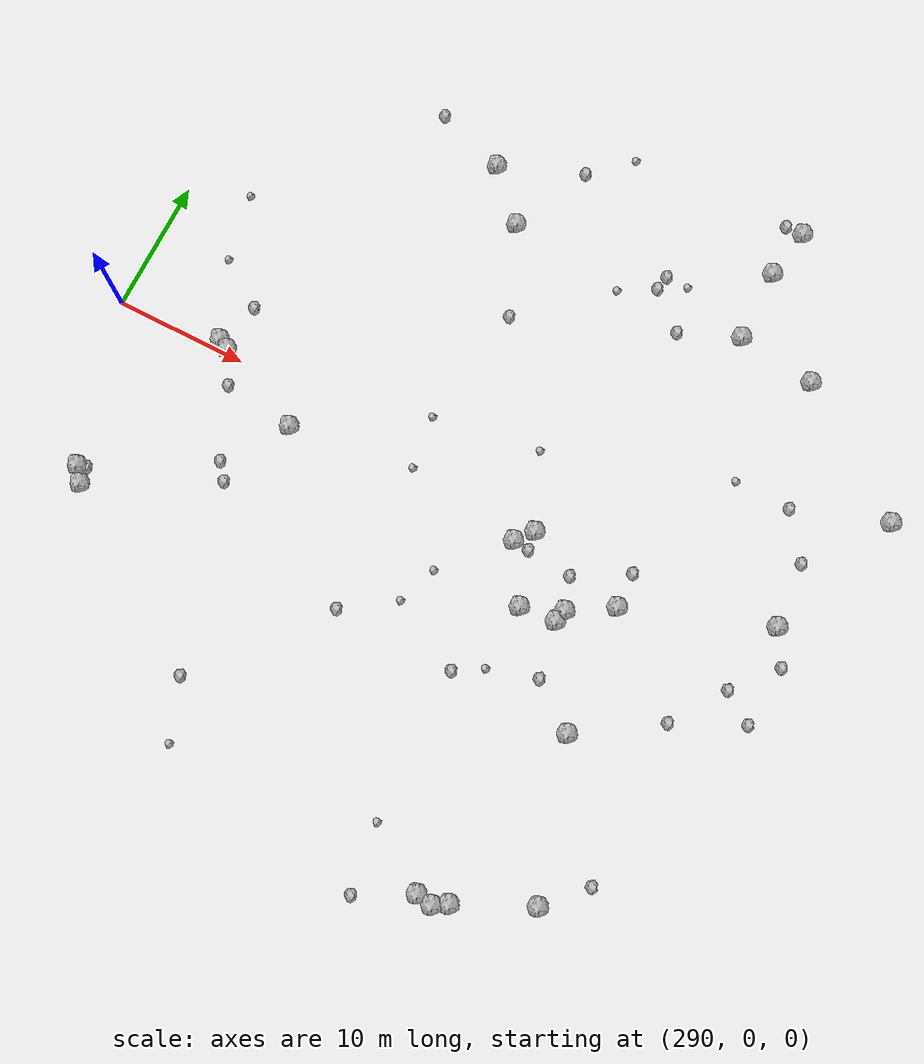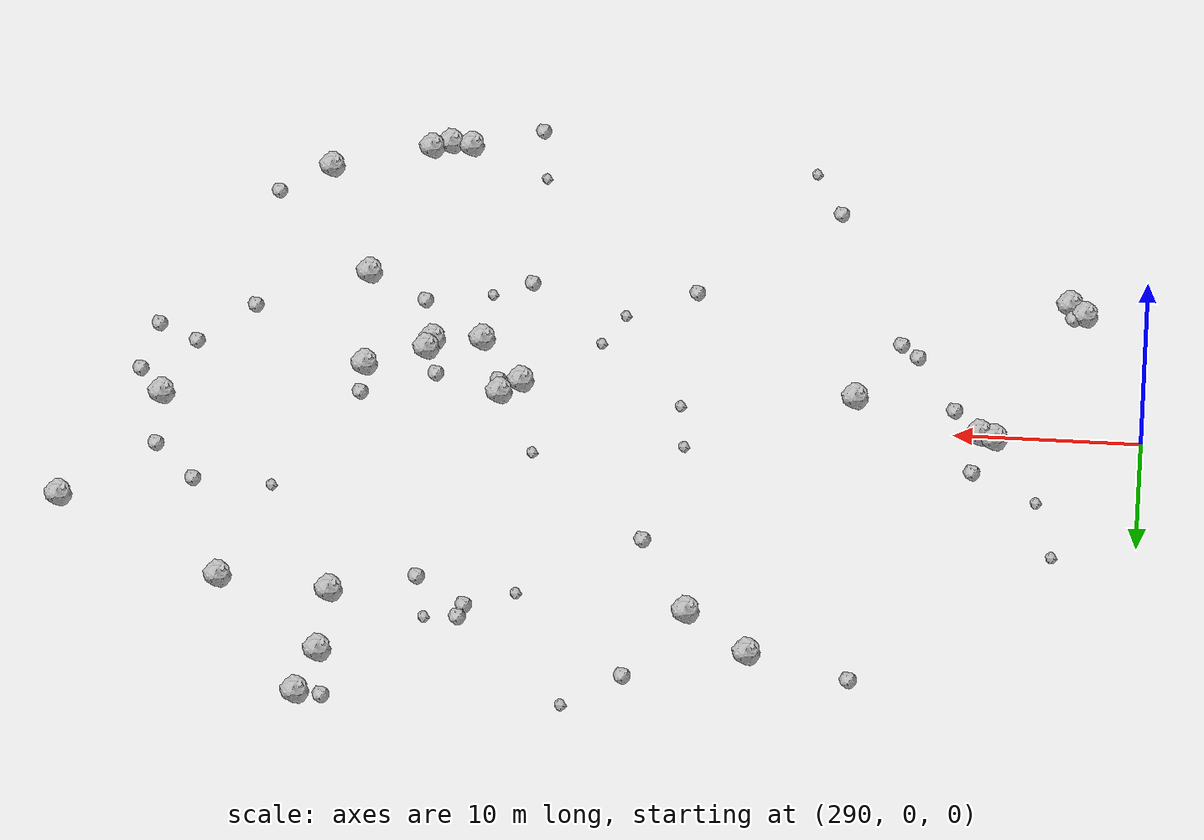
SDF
<sdf version="1.6">
 <world name="default">
  <include><uri>model://sun</uri></include>
  <model name="rock1_8_3">
   <include><uri>model://rock1</uri><pose>346.5642410652772 10.37551302485683 0.5 0 0 0</pose></include>
  </model>
  <model name="rock1_8_4">
   <include><uri>model://rock1</uri><pose>332.81738693338815 -13.276534724986885 0.5 0 0 0</pose></include>
  </model>
  <model name="rock1_8_5">
   <include><uri>model://rock1</uri><pose>294.22415908864707 -13.13361326598811 0.5 0 0 0</pose></include>
  </model>
  <model name="rock1_8_6">
   <include><uri>model://rock1</uri><pose>332.0139182032614 -3.8178052953670765 0.5 0 0 0</pose></include>
  </model>
  <model name="rock1_8_7">
   <include><uri>model://rock1</uri><pose>342.53533948384757 -0.006439662371221289 0.5 0 0 0</pose></include>
  </model>
  <model name="rock1_8_8">
   <include><uri>model://rock1</uri><pose>331.2911293859529 23.493949465347782 0.5 0 0 0</pose></include>
  </model>
  <model name="rock1_8_9">
   <include><uri>model://rock1</uri><pose>331.3472549757432 18.050708571637045 0.5 0 0 0</pose></include>
  </model>
  <model name="rock1_8_10">
   <include><uri>model://rock1</uri><pose>336.2188660527239 -24.504704339852708 0.5 0 0 0</pose></include>
  </model>
  <model name="rock1_8_11">
   <include><uri>model://rock1</uri><pose>331.9685033858939 27.280738058318427 0.5 0 0 0</pose></include>
  </model>
  <model name="rock1_8_12">
   <include><uri>model://rock1</uri><pose>312.89702378402205 18.43500557227857 0.5 0 0 0</pose></include>
  </model>
  <model name="rock1_8_13">
   <include><uri>model://rock1</uri><pose>330.8243655787926 -27.063594034823634 0.5 0 0 0</pose></include>
  </model>
  <model name="rock1_8_14">
   <include><uri>model://rock1</uri><pose>305.4028149512114 -2.6822018501295872 0.5 0 0 0</pose></include>
  </model>
  <model name="rock1_8_15">
   <include><uri>model://rock1</uri><pose>309.52921908464623 21.92354333885212 0.5 0 0 0</pose></include>
  </model>
  <model name="rock1_8_16">
   <include><uri>model://rock1</uri><pose>328.8660397866158 -5.704489742814101 0.5 0 0 0</pose></include>
  </model>
  <model name="rock1_8_17">
   <include><uri>model://rock1</uri><pose>329.81030197213016 -27.656876587858438 0.5 0 0 0</pose></include>
  </model>
  <model name="rock1_8_18">
   <include><uri>model://rock1</uri><pose>323.4359897299658 -2.8444613680310056 0.5 0 0 0</pose></include>
  </model>
  <model name="rock1_8_19">
   <include><uri>model://rock1</uri><pose>337.22651470133997 17.231871019310198 0.5 0 0 0</pose></include>
  </model>
  <model name="rock1_8_20">
   <include><uri>model://rock1</uri><pose>328.59667462887666 -27.450009588056044 0.5 0 0 0</pose></include>
  </model>
  <model name="rock1_8_21">
   <include><uri>model://rock1</uri><pose>325.9246678181128 -6.874942958951504 0.5 0 0 0</pose></include>
  </model>
  <model name="rock1_8_22">
   <include><uri>model://rock1</uri><pose>328.6176827000208 -6.640724835579977 0.5 0 0 0</pose></include>
  </model>
  <model name="rock1_8_23">
   <include><uri>model://rock1</uri><pose>293.37258170756 -12.059175104066824 0.5 0 0 0</pose></include>
  </model>
  <model name="rock1_8_24">
   <include><uri>model://rock1</uri><pose>298.6154618860487 0.35950252783767667 0.5 0 0 0</pose></include>
  </model>
  <model name="rock1_8_25">
   <include><uri>model://rock1</uri><pose>297.8133714031088 0.754524150785457 0.5 0 0 0</pose></include>
  </model>
  <model name="rock1_8_26">
   <include><uri>model://rock1</uri><pose>324.4831823330386 -1.5908596596968252 0.5 0 0 0</pose></include>
  </model>
  <model name="rock2_8_0">
   <include><uri>model://rock2</uri><pose>331.9197836829026 -1.152815055898941 0.3 0 0 0</pose></include>
  </model>
  <model name="rock2_8_1">
   <include><uri>model://rock2</uri><pose>330.6247074406292 27.327232953222882 0.3 0 0 0</pose></include>
  </model>
  <model name="rock2_8_2">
   <include><uri>model://rock2</uri><pose>303.1750631765063 -8.354048740477108 0.3 0 0 0</pose></include>
  </model>
  <model name="rock2_8_3">
   <include><uri>model://rock2</uri><pose>324.66590148341464 -29.53042977640385 0.3 0 0 0</pose></include>
  </model>
  <model name="rock2_8_4">
   <include><uri>model://rock2</uri><pose>300.00787816809304 -1.97773355875459 0.3 0 0 0</pose></include>
  </model>
  <model name="rock2_8_5">
   <include><uri>model://rock2</uri><pose>329.41313826816037 -10.745307429475211 0.3 0 0 0</pose></include>
  </model>
  <model name="rock2_8_6">
   <include><uri>model://rock2</uri><pose>338.6266151142221 -9.473956496777816 0.3 0 0 0</pose></include>
  </model>
  <model name="rock2_8_7">
   <include><uri>model://rock2</uri><pose>298.8386826503314 4.019497078666113 0.3 0 0 0</pose></include>
  </model>
  <model name="rock2_8_8">
   <include><uri>model://rock2</uri><pose>293.97072938986645 -11.865828917741691 0.3 0 0 0</pose></include>
  </model>
  <model name="rock2_8_9">
   <include><uri>model://rock2</uri><pose>323.72899283175263 -13.016791765065022 0.3 0 0 0</pose></include>
  </model>
  <model name="rock2_8_10">
   <include><uri>model://rock2</uri><pose>324.29195977879647 18.685158458749257 0.3 0 0 0</pose></include>
  </model>
  <model name="rock2_8_11">
   <include><uri>model://rock2</uri><pose>343.9874289298641 -2.465091986057079 0.3 0 0 0</pose></include>
  </model>
  <model name="rock2_8_12">
   <include><uri>model://rock2</uri><pose>341.3378675506882 -5.540782216659899 0.3 0 0 0</pose></include>
  </model>
  <model name="rock2_8_13">
   <include><uri>model://rock2</uri><pose>342.1465328261564 4.858628301289599 0.3 0 0 0</pose></include>
  </model>
  <model name="rock2_8_14">
   <include><uri>model://rock2</uri><pose>314.61002485120196 -12.784019953057477 0.3 0 0 0</pose></include>
  </model>
  <model name="rock2_8_15">
   <include><uri>model://rock2</uri><pose>324.6491982891248 -2.9835645130980595 0.3 0 0 0</pose></include>
  </model>
  <model name="rock2_8_16">
   <include><uri>model://rock2</uri><pose>315.65238080035033 24.362885357477737 0.3 0 0 0</pose></include>
  </model>
  <model name="rock2_8_17">
   <include><uri>model://rock2</uri><pose>324.5023532623866 19.80274991975479 0.3 0 0 0</pose></include>
  </model>
  <model name="rock2_8_18">
   <include><uri>model://rock2</uri><pose>326.9891625129465 16.28132736462613 0.3 0 0 0</pose></include>
  </model>
  <model name="rock2_8_19">
   <include><uri>model://rock2</uri><pose>304.2390468192977 23.770556708623104 0.3 0 0 0</pose></include>
  </model>
  <model name="rock2_8_20">
   <include><uri>model://rock2</uri><pose>339.73744997354254 8.068806522554688 0.3 0 0 0</pose></include>
  </model>
  <model name="rock2_8_21">
   <include><uri>model://rock2</uri><pose>338.84818230222436 -21.704902439378557 0.3 0 0 0</pose></include>
  </model>
  <model name="rock2_8_22">
   <include><uri>model://rock2</uri><pose>307.2119358218897 -21.836330535326503 0.3 0 0 0</pose></include>
  </model>
  <model name="rock2_8_23">
   <include><uri>model://rock2</uri><pose>328.06999505305873 -3.324028073441724 0.3 0 0 0</pose></include>
  </model>
  <model name="rock2_8_24">
   <include><uri>model://rock2</uri><pose>343.60798897934535 -7.102228174996533 0.3 0 0 0</pose></include>
  </model>
  <model name="rock2_8_25">
   <include><uri>model://rock2</uri><pose>302.22038823343553 -7.154925385241825 0.3 0 0 0</pose></include>
  </model>
  <model name="rock2_8_26">
   <include><uri>model://rock2</uri><pose>315.64291568900126 11.863711150753822 0.3 0 0 0</pose></include>
  </model>
  <model name="rock3_8_0">
   <include><uri>model://rock3</uri><pose>295.3472192123555 6.442657701837042 0.2 0 0 0</pose></include>
  </model>
  <model name="rock3_8_1">
   <include><uri>model://rock3</uri><pose>319.3810035202541 -7.310618563040421 0.2 0 0 0</pose></include>
  </model>
  <model name="rock3_8_2">
   <include><uri>model://rock3</uri><pose>335.50834426456584 8.150738042943829 0.2 0 0 0</pose></include>
  </model>
  <model name="rock3_8_3">
   <include><uri>model://rock3</uri><pose>318.3002397792762 -10.267462024020439 0.2 0 0 0</pose></include>
  </model>
  <model name="rock3_8_4">
   <include><uri>model://rock3</uri><pose>325.76380025223284 -11.831621493441958 0.2 0 0 0</pose></include>
  </model>
  <model name="rock3_8_5">
   <include><uri>model://rock3</uri><pose>308.8113156555892 -26.30549549463072 0.2 0 0 0</pose></include>
  </model>
  <model name="rock3_8_6">
   <include><uri>model://rock3</uri><pose>314.63175251213886 -1.3895568731820873 0.2 0 0 0</pose></include>
  </model>
  <model name="rock3_8_7">
   <include><uri>model://rock3</uri><pose>322.1336949189746 3.842527055906018 0.2 0 0 0</pose></include>
  </model>
  <model name="rock3_8_8">
   <include><uri>model://rock3</uri><pose>314.1498172787188 2.5963647417172524 0.2 0 0 0</pose></include>
  </model>
  <model name="rock3_8_9">
   <include><uri>model://rock3</uri><pose>318.5037869281003 27.00058425693657 0.2 0 0 0</pose></include>
  </model>
  <model name="rock3_8_10">
   <include><uri>model://rock3</uri><pose>323.9743670943357 -24.500156397326244 0.2 0 0 0</pose></include>
  </model>
  <model name="rock3_8_11">
   <include><uri>model://rock3</uri><pose>321.71101662608055 17.20178709736456 0.2 0 0 0</pose></include>
  </model>
  <model name="rock3_8_12">
   <include><uri>model://rock3</uri><pose>326.2096419248309 19.7473306862979 0.2 0 0 0</pose></include>
  </model>
  <model name="rock3_8_13">
   <include><uri>model://rock3</uri><pose>294.368869861277 11.532613184146477 0.2 0 0 0</pose></include>
  </model>
 </world>
</sdf>
